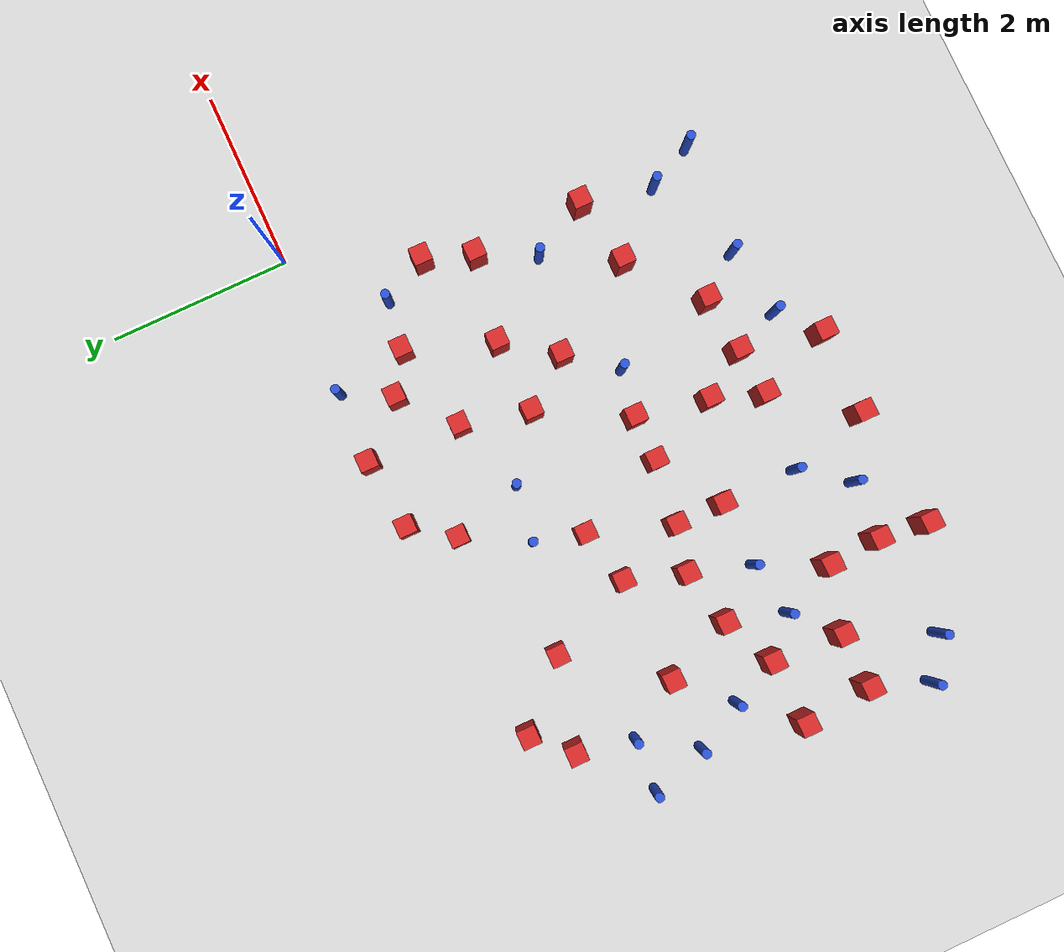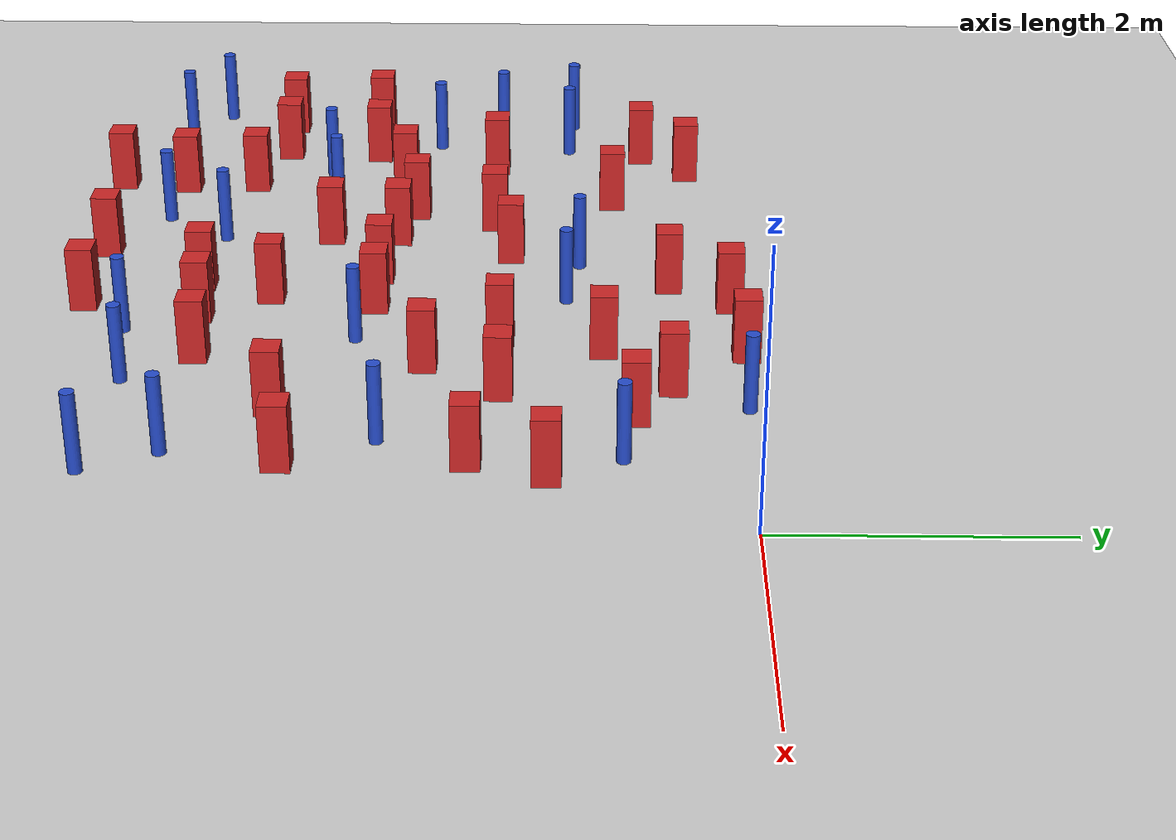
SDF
<sdf version="1.6">
 <world name="default">
  <model name="ground_plane">
   <static>1</static>
   <link name="link">
    <collision name="collision">
     <geometry><plane><normal>0 0 1</normal><size>100 100</size></plane></geometry>
     <surface><friction><ode><mu>100</mu><mu2>50</mu2></ode></friction></surface>
    </collision>
    <visual name="visual">
     <cast_shadows>0</cast_shadows>
     <geometry><plane><normal>0 0 1</normal><size>100 100</size></plane></geometry>
     <material>
      <ambient>1.0 1.0 1.0 1.0</ambient>
      <diffuse>0.8 0.8 0.8 1.0</diffuse>
      <specular>0.01 0.01 0.01 1.000000</specular>
     </material>
    </visual>
   </link>
  </model>
  <model name="square_post_obstacle0">
   <static>true</static>
   <pose>-2.3731624759 0.0419707652193 8.22691968438e-08 7.2212513382e-06 -7.54495500217e-07 2.29674213826e-05</pose>
   <link name="link">
    <pose>0 0 0.25 0 -0 0</pose>
    <inertial>
     <mass>100</mass>
     <inertia>
      <ixx>0.166667</ixx>
      <ixy>0</ixy>
      <ixz>0</ixz>
      <iyy>0.166667</iyy>
      <iyz>0</iyz>
      <izz>0.166667</izz>
     </inertia>
    </inertial>
    <collision name="collision"><geometry><box><size>.2 .2 .5</size></box></geometry></collision>
    <visual name="visual">
     <geometry><box><size>.2 .2 .5</size></box></geometry>
     <material>
      <script><name>Gazebo/Red</name><uri>file://media/materials/scripts/gazebo.material</uri></script>
     </material>
    </visual>
   </link>
  </model>
  <model name="pole_obstacle1">
   <static>true</static>
   <pose>-6.46145248811 -4.59415883303 2.88873142074e-08 -9.90536690842e-09 4.60219948965e-07 -1.20965994976e-07</pose>
   <link name="link">
    <pose>0 0 0.3 0 -0 0</pose>
    <inertial>
     <mass>1</mass>
     <inertia><ixx>0.145833</ixx><ixy>0</ixy><ixz>0</ixz><iyy>0.145833</iyy><iyz>0</iyz><izz>0.125</izz></inertia>
    </inertial>
    <collision name="collision">
     <geometry><cylinder><radius>0.05</radius><length>.6</length></cylinder></geometry>
    </collision>
    <visual name="visual">
     <geometry><cylinder><radius>0.05</radius><length>.6</length></cylinder></geometry>
     <material>
      <script><name>Gazebo/Blue</name><uri>file://media/materials/scripts/gazebo.material</uri></script>
     </material>
    </visual>
   </link>
  </model>
  <model name="square_post_obstacle6">
   <static>true</static>
   <pose>-3.60637497472 -2.69285466474 8.22691968438e-08 7.2212513382e-06 -7.54495500217e-07 2.29674213826e-05</pose>
   <link name="link">
    <pose>0 0 0.25 0 -0 0</pose>
    <inertial>
     <mass>100</mass>
     <inertia>
      <ixx>0.166667</ixx>
      <ixy>0</ixy>
      <ixz>0</ixz>
      <iyy>0.166667</iyy>
      <iyz>0</iyz>
      <izz>0.166667</izz>
     </inertia>
    </inertial>
    <collision name="collision"><geometry><box><size>.2 .2 .5</size></box></geometry></collision>
    <visual name="visual">
     <geometry><box><size>.2 .2 .5</size></box></geometry>
     <material>
      <script><name>Gazebo/Red</name><uri>file://media/materials/scripts/gazebo.material</uri></script>
     </material>
    </visual>
   </link>
  </model>
  <model name="square_post_obstacle10">
   <static>true</static>
   <pose>-5.98233309754 -0.667109607882 8.22691968438e-08 7.2212513382e-06 -7.54495500217e-07 2.29674213826e-05</pose>
   <link name="link">
    <pose>0 0 0.25 0 -0 0</pose>
    <inertial>
     <mass>100</mass>
     <inertia>
      <ixx>0.166667</ixx>
      <ixy>0</ixy>
      <ixz>0</ixz>
      <iyy>0.166667</iyy>
      <iyz>0</iyz>
      <izz>0.166667</izz>
     </inertia>
    </inertial>
    <collision name="collision"><geometry><box><size>.2 .2 .5</size></box></geometry></collision>
    <visual name="visual">
     <geometry><box><size>.2 .2 .5</size></box></geometry>
     <material>
      <script><name>Gazebo/Red</name><uri>file://media/materials/scripts/gazebo.material</uri></script>
     </material>
    </visual>
   </link>
  </model>
  <model name="pole_obstacle8">
   <static>true</static>
   <pose>-6.69223474554 -1.24528265409 2.88873142074e-08 -9.90536689445e-09 4.60219948999e-07 -1.20965994956e-07</pose>
   <link name="link">
    <pose>0 0 0.3 0 -0 0</pose>
    <inertial>
     <mass>1</mass>
     <inertia><ixx>0.145833</ixx><ixy>0</ixy><ixz>0</ixz><iyy>0.145833</iyy><iyz>0</iyz><izz>0.125</izz></inertia>
    </inertial>
    <collision name="collision">
     <geometry><cylinder><radius>0.05</radius><length>.6</length></cylinder></geometry>
    </collision>
    <visual name="visual">
     <geometry><cylinder><radius>0.05</radius><length>.6</length></cylinder></geometry>
     <material>
      <script><name>Gazebo/Blue</name><uri>file://media/materials/scripts/gazebo.material</uri></script>
     </material>
    </visual>
   </link>
  </model>
  <model name="square_post_obstacle22">
   <static>true</static>
   <pose>-5.62600483172 -0.300672023755 8.22691968438e-08 7.2212513382e-06 -7.54495500217e-07 2.29674213826e-05</pose>
   <link name="link">
    <pose>0 0 0.25 0 -0 0</pose>
    <inertial>
     <mass>100</mass>
     <inertia>
      <ixx>0.166667</ixx>
      <ixy>0</ixy>
      <ixz>0</ixz>
      <iyy>0.166667</iyy>
      <iyz>0</iyz>
      <izz>0.166667</izz>
     </inertia>
    </inertial>
    <collision name="collision"><geometry><box><size>.2 .2 .5</size></box></geometry></collision>
    <visual name="visual">
     <geometry><box><size>.2 .2 .5</size></box></geometry>
     <material>
      <script><name>Gazebo/Red</name><uri>file://media/materials/scripts/gazebo.material</uri></script>
     </material>
    </visual>
   </link>
  </model>
  <model name="square_post_obstacle29">
   <static>true</static>
   <pose>-3.473738309 -0.489324181434 8.22691968438e-08 7.2212513382e-06 -7.54495500217e-07 2.29674213826e-05</pose>
   <link name="link">
    <pose>0 0 0.25 0 -0 0</pose>
    <inertial>
     <mass>100</mass>
     <inertia>
      <ixx>0.166667</ixx>
      <ixy>0</ixy>
      <ixz>0</ixz>
      <iyy>0.166667</iyy>
      <iyz>0</iyz>
      <izz>0.166667</izz>
     </inertia>
    </inertial>
    <collision name="collision"><geometry><box><size>.2 .2 .5</size></box></geometry></collision>
    <visual name="visual">
     <geometry><box><size>.2 .2 .5</size></box></geometry>
     <material>
      <script><name>Gazebo/Red</name><uri>file://media/materials/scripts/gazebo.material</uri></script>
     </material>
    </visual>
   </link>
  </model>
  <model name="pole_obstacle34">
   <static>true</static>
   <pose>-6.50235670165 -1.85695007518 2.88873142074e-08 -9.90536689445e-09 4.60219948999e-07 -1.20965994956e-07</pose>
   <link name="link">
    <pose>0 0 0.3 0 -0 0</pose>
    <inertial>
     <mass>1</mass>
     <inertia><ixx>0.145833</ixx><ixy>0</ixy><ixz>0</ixz><iyy>0.145833</iyy><iyz>0</iyz><izz>0.125</izz></inertia>
    </inertial>
    <collision name="collision">
     <geometry><cylinder><radius>0.05</radius><length>.6</length></cylinder></geometry>
    </collision>
    <visual name="visual">
     <geometry><cylinder><radius>0.05</radius><length>.6</length></cylinder></geometry>
     <material>
      <script><name>Gazebo/Blue</name><uri>file://media/materials/scripts/gazebo.material</uri></script>
     </material>
    </visual>
   </link>
  </model>
  <model name="pole_obstacle38">
   <static>true</static>
   <pose>-3.24315775724 -1.26322818179 2.88873142074e-08 -9.90536689395e-09 4.60219949e-07 -1.20965994953e-07</pose>
   <link name="link">
    <pose>0 0 0.3 0 -0 0</pose>
    <inertial>
     <mass>1</mass>
     <inertia><ixx>0.145833</ixx><ixy>0</ixy><ixz>0</ixz><iyy>0.145833</iyy><iyz>0</iyz><izz>0.125</izz></inertia>
    </inertial>
    <collision name="collision">
     <geometry><cylinder><radius>0.05</radius><length>.6</length></cylinder></geometry>
    </collision>
    <visual name="visual">
     <geometry><cylinder><radius>0.05</radius><length>.6</length></cylinder></geometry>
     <material>
      <script><name>Gazebo/Blue</name><uri>file://media/materials/scripts/gazebo.material</uri></script>
     </material>
    </visual>
   </link>
  </model>
  <model name="square_post_obstacle40">
   <static>true</static>
   <pose>-1.77938917814 -1.71613806845 8.22691968438e-08 7.2212513382e-06 -7.54495500217e-07 2.29674213826e-05</pose>
   <link name="link">
    <pose>0 0 0.25 0 -0 0</pose>
    <inertial>
     <mass>100</mass>
     <inertia>
      <ixx>0.166667</ixx>
      <ixy>0</ixy>
      <ixz>0</ixz>
      <iyy>0.166667</iyy>
      <iyz>0</iyz>
      <izz>0.166667</izz>
     </inertia>
    </inertial>
    <collision name="collision"><geometry><box><size>.2 .2 .5</size></box></geometry></collision>
    <visual name="visual">
     <geometry><box><size>.2 .2 .5</size></box></geometry>
     <material>
      <script><name>Gazebo/Red</name><uri>file://media/materials/scripts/gazebo.material</uri></script>
     </material>
    </visual>
   </link>
  </model>
  <model name="square_post_obstacle49">
   <static>true</static>
   <pose>-0.783361529921 -3.14025951833 8.22691968438e-08 7.2212513382e-06 -7.54495500217e-07 2.29674213826e-05</pose>
   <link name="link">
    <pose>0 0 0.25 0 -0 0</pose>
    <inertial>
     <mass>100</mass>
     <inertia>
      <ixx>0.166667</ixx>
      <ixy>0</ixy>
      <ixz>0</ixz>
      <iyy>0.166667</iyy>
      <iyz>0</iyz>
      <izz>0.166667</izz>
     </inertia>
    </inertial>
    <collision name="collision"><geometry><box><size>.2 .2 .5</size></box></geometry></collision>
    <visual name="visual">
     <geometry><box><size>.2 .2 .5</size></box></geometry>
     <material>
      <script><name>Gazebo/Red</name><uri>file://media/materials/scripts/gazebo.material</uri></script>
     </material>
    </visual>
   </link>
  </model>
  <model name="square_post_obstacle53">
   <static>true</static>
   <pose>-3.25608603577 -3.48951153543 8.22691968438e-08 7.2212513382e-06 -7.54495500217e-07 2.29674213826e-05</pose>
   <link name="link">
    <pose>0 0 0.25 0 -0 0</pose>
    <inertial>
     <mass>100</mass>
     <inertia>
      <ixx>0.166667</ixx>
      <ixy>0</ixy>
      <ixz>0</ixz>
      <iyy>0.166667</iyy>
      <iyz>0</iyz>
      <izz>0.166667</izz>
     </inertia>
    </inertial>
    <collision name="collision"><geometry><box><size>.2 .2 .5</size></box></geometry></collision>
    <visual name="visual">
     <geometry><box><size>.2 .2 .5</size></box></geometry>
     <material>
      <script><name>Gazebo/Red</name><uri>file://media/materials/scripts/gazebo.material</uri></script>
     </material>
    </visual>
   </link>
  </model>
  <model name="pole_obstacle51">
   <static>true</static>
   <pose>-2.58568316584 -2.79401171315 2.88873142074e-08 -9.90536690232e-09 4.6021994898e-07 -1.20965994968e-07</pose>
   <link name="link">
    <pose>0 0 0.3 0 -0 0</pose>
    <inertial>
     <mass>1</mass>
     <inertia><ixx>0.145833</ixx><ixy>0</ixy><ixz>0</ixz><iyy>0.145833</iyy><iyz>0</iyz><izz>0.125</izz></inertia>
    </inertial>
    <collision name="collision">
     <geometry><cylinder><radius>0.05</radius><length>.6</length></cylinder></geometry>
    </collision>
    <visual name="visual">
     <geometry><cylinder><radius>0.05</radius><length>.6</length></cylinder></geometry>
     <material>
      <script><name>Gazebo/Blue</name><uri>file://media/materials/scripts/gazebo.material</uri></script>
     </material>
    </visual>
   </link>
  </model>
  <model name="square_post_obstacle60">
   <static>true</static>
   <pose>-2.29127723298 -3.92457616306 8.22691968438e-08 7.2212513382e-06 -7.54495500217e-07 2.29674213826e-05</pose>
   <link name="link">
    <pose>0 0 0.25 0 -0 0</pose>
    <inertial>
     <mass>100</mass>
     <inertia>
      <ixx>0.166667</ixx>
      <ixy>0</ixy>
      <ixz>0</ixz>
      <iyy>0.166667</iyy>
      <iyz>0</iyz>
      <izz>0.166667</izz>
     </inertia>
    </inertial>
    <collision name="collision"><geometry><box><size>.2 .2 .5</size></box></geometry></collision>
    <visual name="visual">
     <geometry><box><size>.2 .2 .5</size></box></geometry>
     <material>
      <script><name>Gazebo/Red</name><uri>file://media/materials/scripts/gazebo.material</uri></script>
     </material>
    </visual>
   </link>
  </model>
  <model name="square_post_obstacle63">
   <static>true</static>
   <pose>-1.53705062481 -3.28708723595 8.22691968438e-08 7.2212513382e-06 -7.54495500217e-07 2.29674213826e-05</pose>
   <link name="link">
    <pose>0 0 0.25 0 -0 0</pose>
    <inertial>
     <mass>100</mass>
     <inertia>
      <ixx>0.166667</ixx>
      <ixy>0</ixy>
      <ixz>0</ixz>
      <iyy>0.166667</iyy>
      <iyz>0</iyz>
      <izz>0.166667</izz>
     </inertia>
    </inertial>
    <collision name="collision"><geometry><box><size>.2 .2 .5</size></box></geometry></collision>
    <visual name="visual">
     <geometry><box><size>.2 .2 .5</size></box></geometry>
     <material>
      <script><name>Gazebo/Red</name><uri>file://media/materials/scripts/gazebo.material</uri></script>
     </material>
    </visual>
   </link>
  </model>
  <model name="square_post_obstacle66">
   <static>true</static>
   <pose>-5.73075902964 -1.88004602222 8.22691968438e-08 7.2212513382e-06 -7.54495500217e-07 2.29674213826e-05</pose>
   <link name="link">
    <pose>0 0 0.25 0 -0 0</pose>
    <inertial>
     <mass>100</mass>
     <inertia>
      <ixx>0.166667</ixx>
      <ixy>0</ixy>
      <ixz>0</ixz>
      <iyy>0.166667</iyy>
      <iyz>0</iyz>
      <izz>0.166667</izz>
     </inertia>
    </inertial>
    <collision name="collision"><geometry><box><size>.2 .2 .5</size></box></geometry></collision>
    <visual name="visual">
     <geometry><box><size>.2 .2 .5</size></box></geometry>
     <material>
      <script><name>Gazebo/Red</name><uri>file://media/materials/scripts/gazebo.material</uri></script>
     </material>
    </visual>
   </link>
  </model>
  <model name="square_post_obstacle67">
   <static>true</static>
   <pose>-1.86234983022 -0.497988338039 8.22691968438e-08 7.2212513382e-06 -7.54495500217e-07 2.29674213826e-05</pose>
   <link name="link">
    <pose>0 0 0.25 0 -0 0</pose>
    <inertial>
     <mass>100</mass>
     <inertia>
      <ixx>0.166667</ixx>
      <ixy>0</ixy>
      <ixz>0</ixz>
      <iyy>0.166667</iyy>
      <iyz>0</iyz>
      <izz>0.166667</izz>
     </inertia>
    </inertial>
    <collision name="collision"><geometry><box><size>.2 .2 .5</size></box></geometry></collision>
    <visual name="visual">
     <geometry><box><size>.2 .2 .5</size></box></geometry>
     <material>
      <script><name>Gazebo/Red</name><uri>file://media/materials/scripts/gazebo.material</uri></script>
     </material>
    </visual>
   </link>
  </model>
  <model name="square_post_obstacle75">
   <static>true</static>
   <pose>-3.10308952383 -2.69210156754 8.22691968438e-08 7.2212513382e-06 -7.54495500217e-07 2.29674213826e-05</pose>
   <link name="link">
    <pose>0 0 0.25 0 -0 0</pose>
    <inertial>
     <mass>100</mass>
     <inertia>
      <ixx>0.166667</ixx>
      <ixy>0</ixy>
      <ixz>0</ixz>
      <iyy>0.166667</iyy>
      <iyz>0</iyz>
      <izz>0.166667</izz>
     </inertia>
    </inertial>
    <collision name="collision"><geometry><box><size>.2 .2 .5</size></box></geometry></collision>
    <visual name="visual">
     <geometry><box><size>.2 .2 .5</size></box></geometry>
     <material>
      <script><name>Gazebo/Red</name><uri>file://media/materials/scripts/gazebo.material</uri></script>
     </material>
    </visual>
   </link>
  </model>
  <model name="square_post_obstacle76">
   <static>true</static>
   <pose>-3.15319473334 -0.0411521689804 8.22691968438e-08 7.2212513382e-06 -7.54495500217e-07 2.29674213826e-05</pose>
   <link name="link">
    <pose>0 0 0.25 0 -0 0</pose>
    <inertial>
     <mass>100</mass>
     <inertia>
      <ixx>0.166667</ixx>
      <ixy>0</ixy>
      <ixz>0</ixz>
      <iyy>0.166667</iyy>
      <iyz>0</iyz>
      <izz>0.166667</izz>
     </inertia>
    </inertial>
    <collision name="collision"><geometry><box><size>.2 .2 .5</size></box></geometry></collision>
    <visual name="visual">
     <geometry><box><size>.2 .2 .5</size></box></geometry>
     <material>
      <script><name>Gazebo/Red</name><uri>file://media/materials/scripts/gazebo.material</uri></script>
     </material>
    </visual>
   </link>
  </model>
  <model name="square_post_obstacle77">
   <static>true</static>
   <pose>-2.59081537723 -1.73606076694 8.22691968438e-08 7.2212513382e-06 -7.54495500217e-07 2.29674213826e-05</pose>
   <link name="link">
    <pose>0 0 0.25 0 -0 0</pose>
    <inertial>
     <mass>100</mass>
     <inertia>
      <ixx>0.166667</ixx>
      <ixy>0</ixy>
      <ixz>0</ixz>
      <iyy>0.166667</iyy>
      <iyz>0</iyz>
      <izz>0.166667</izz>
     </inertia>
    </inertial>
    <collision name="collision"><geometry><box><size>.2 .2 .5</size></box></geometry></collision>
    <visual name="visual">
     <geometry><box><size>.2 .2 .5</size></box></geometry>
     <material>
      <script><name>Gazebo/Red</name><uri>file://media/materials/scripts/gazebo.material</uri></script>
     </material>
    </visual>
   </link>
  </model>
  <model name="pole_obstacle85">
   <static>true</static>
   <pose>-3.85227615762 -1.17030086917 2.88873142074e-08 -9.90536689395e-09 4.60219949e-07 -1.20965994953e-07</pose>
   <link name="link">
    <pose>0 0 0.3 0 -0 0</pose>
    <inertial>
     <mass>1</mass>
     <inertia><ixx>0.145833</ixx><ixy>0</ixy><ixz>0</ixz><iyy>0.145833</iyy><iyz>0</iyz><izz>0.125</izz></inertia>
    </inertial>
    <collision name="collision">
     <geometry><cylinder><radius>0.05</radius><length>.6</length></cylinder></geometry>
    </collision>
    <visual name="visual">
     <geometry><cylinder><radius>0.05</radius><length>.6</length></cylinder></geometry>
     <material>
      <script><name>Gazebo/Blue</name><uri>file://media/materials/scripts/gazebo.material</uri></script>
     </material>
    </visual>
   </link>
  </model>
  <model name="square_post_obstacle81">
   <static>true</static>
   <pose>-5.37946193562 -4.98454100906 8.22691968438e-08 7.2212513382e-06 -7.54495500217e-07 2.29674213826e-05</pose>
   <link name="link">
    <pose>0 0 0.25 0 -0 0</pose>
    <inertial>
     <mass>100</mass>
     <inertia>
      <ixx>0.166667</ixx>
      <ixy>0</ixy>
      <ixz>0</ixz>
      <iyy>0.166667</iyy>
      <iyz>0</iyz>
      <izz>0.166667</izz>
     </inertia>
    </inertial>
    <collision name="collision"><geometry><box><size>.2 .2 .5</size></box></geometry></collision>
    <visual name="visual">
     <geometry><box><size>.2 .2 .5</size></box></geometry>
     <material>
      <script><name>Gazebo/Red</name><uri>file://media/materials/scripts/gazebo.material</uri></script>
     </material>
    </visual>
   </link>
  </model>
  <model name="square_post_obstacle83">
   <static>true</static>
   <pose>-2.17954546836 -2.27250172768 8.22691968438e-08 7.2212513382e-06 -7.54495500217e-07 2.29674213826e-05</pose>
   <link name="link">
    <pose>0 0 0.25 0 -0 0</pose>
    <inertial>
     <mass>100</mass>
     <inertia>
      <ixx>0.166667</ixx>
      <ixy>0</ixy>
      <ixz>0</ixz>
      <iyy>0.166667</iyy>
      <iyz>0</iyz>
      <izz>0.166667</izz>
     </inertia>
    </inertial>
    <collision name="collision"><geometry><box><size>.2 .2 .5</size></box></geometry></collision>
    <visual name="visual">
     <geometry><box><size>.2 .2 .5</size></box></geometry>
     <material>
      <script><name>Gazebo/Red</name><uri>file://media/materials/scripts/gazebo.material</uri></script>
     </material>
    </visual>
   </link>
  </model>
  <model name="square_post_obstacle84">
   <static>true</static>
   <pose>-6.69979892688 -2.93054896401 8.22691968438e-08 7.2212513382e-06 -7.54495500217e-07 2.29674213826e-05</pose>
   <link name="link">
    <pose>0 0 0.25 0 -0 0</pose>
    <inertial>
     <mass>100</mass>
     <inertia>
      <ixx>0.166667</ixx>
      <ixy>0</ixy>
      <ixz>0</ixz>
      <iyy>0.166667</iyy>
      <iyz>0</iyz>
      <izz>0.166667</izz>
     </inertia>
    </inertial>
    <collision name="collision"><geometry><box><size>.2 .2 .5</size></box></geometry></collision>
    <visual name="visual">
     <geometry><box><size>.2 .2 .5</size></box></geometry>
     <material>
      <script><name>Gazebo/Red</name><uri>file://media/materials/scripts/gazebo.material</uri></script>
     </material>
    </visual>
   </link>
  </model>
  <model name="pole_obstacle99">
   <static>true</static>
   <pose>-2.71224328505 -4.51716945643 2.88873142074e-08 -9.90536689859e-09 4.60219948989e-07 -1.20965994961e-07</pose>
   <link name="link">
    <pose>0 0 0.3 0 -0 0</pose>
    <inertial>
     <mass>1</mass>
     <inertia><ixx>0.145833</ixx><ixy>0</ixy><ixz>0</ixz><iyy>0.145833</iyy><iyz>0</iyz><izz>0.125</izz></inertia>
    </inertial>
    <collision name="collision">
     <geometry><cylinder><radius>0.05</radius><length>.6</length></cylinder></geometry>
    </collision>
    <visual name="visual">
     <geometry><cylinder><radius>0.05</radius><length>.6</length></cylinder></geometry>
     <material>
      <script><name>Gazebo/Blue</name><uri>file://media/materials/scripts/gazebo.material</uri></script>
     </material>
    </visual>
   </link>
  </model>
  <model name="square_post_obstacle88">
   <static>true</static>
   <pose>-2.41449330346 -0.983638743938 8.22691968438e-08 7.2212513382e-06 -7.54495500217e-07 2.29674213826e-05</pose>
   <link name="link">
    <pose>0 0 0.25 0 -0 0</pose>
    <inertial>
     <mass>100</mass>
     <inertia>
      <ixx>0.166667</ixx>
      <ixy>0</ixy>
      <ixz>0</ixz>
      <iyy>0.166667</iyy>
      <iyz>0</iyz>
      <izz>0.166667</izz>
     </inertia>
    </inertial>
    <collision name="collision"><geometry><box><size>.2 .2 .5</size></box></geometry></collision>
    <visual name="visual">
     <geometry><box><size>.2 .2 .5</size></box></geometry>
     <material>
      <script><name>Gazebo/Red</name><uri>file://media/materials/scripts/gazebo.material</uri></script>
     </material>
    </visual>
   </link>
  </model>
  <model name="pole_obstacle102">
   <static>true</static>
   <pose>-4.31191837084 -3.98675876905 2.88873142074e-08 -9.90536690067e-09 4.60219948984e-07 -1.20965994963e-07</pose>
   <link name="link">
    <pose>0 0 0.3 0 -0 0</pose>
    <inertial>
     <mass>1</mass>
     <inertia><ixx>0.145833</ixx><ixy>0</ixy><ixz>0</ixz><iyy>0.145833</iyy><iyz>0</iyz><izz>0.125</izz></inertia>
    </inertial>
    <collision name="collision">
     <geometry><cylinder><radius>0.05</radius><length>.6</length></cylinder></geometry>
    </collision>
    <visual name="visual">
     <geometry><cylinder><radius>0.05</radius><length>.6</length></cylinder></geometry>
     <material>
      <script><name>Gazebo/Blue</name><uri>file://media/materials/scripts/gazebo.material</uri></script>
     </material>
    </visual>
   </link>
  </model>
  <model name="pole_obstacle109">
   <static>true</static>
   <pose>-0.686730005713 -4.45706729058 2.88873142074e-08 -9.90536689661e-09 4.60219948993e-07 -1.20965994957e-07</pose>
   <link name="link">
    <pose>0 0 0.3 0 -0 0</pose>
    <inertial>
     <mass>1</mass>
     <inertia><ixx>0.145833</ixx><ixy>0</ixy><ixz>0</ixz><iyy>0.145833</iyy><iyz>0</iyz><izz>0.125</izz></inertia>
    </inertial>
    <collision name="collision">
     <geometry><cylinder><radius>0.05</radius><length>.6</length></cylinder></geometry>
    </collision>
    <visual name="visual">
     <geometry><cylinder><radius>0.05</radius><length>.6</length></cylinder></geometry>
     <material>
      <script><name>Gazebo/Blue</name><uri>file://media/materials/scripts/gazebo.material</uri></script>
     </material>
    </visual>
   </link>
  </model>
  <model name="pole_obstacle126">
   <static>true</static>
   <pose>-0.936953569316 -3.94710325393 2.88873142074e-08 -9.90536689636e-09 4.60219948994e-07 -1.20965994958e-07</pose>
   <link name="link">
    <pose>0 0 0.3 0 -0 0</pose>
    <inertial>
     <mass>1</mass>
     <inertia><ixx>0.145833</ixx><ixy>0</ixy><ixz>0</ixz><iyy>0.145833</iyy><iyz>0</iyz><izz>0.125</izz></inertia>
    </inertial>
    <collision name="collision">
     <geometry><cylinder><radius>0.05</radius><length>.6</length></cylinder></geometry>
    </collision>
    <visual name="visual">
     <geometry><cylinder><radius>0.05</radius><length>.6</length></cylinder></geometry>
     <material>
      <script><name>Gazebo/Blue</name><uri>file://media/materials/scripts/gazebo.material</uri></script>
     </material>
    </visual>
   </link>
  </model>
  <model name="pole_obstacle132">
   <static>true</static>
   <pose>-6.8834823391 -4.30624572221 2.88873142074e-08 -9.90536690842e-09 4.60219948965e-07 -1.20965994976e-07</pose>
   <link name="link">
    <pose>0 0 0.3 0 -0 0</pose>
    <inertial>
     <mass>1</mass>
     <inertia><ixx>0.145833</ixx><ixy>0</ixy><ixz>0</ixz><iyy>0.145833</iyy><iyz>0</iyz><izz>0.125</izz></inertia>
    </inertial>
    <collision name="collision">
     <geometry><cylinder><radius>0.05</radius><length>.6</length></cylinder></geometry>
    </collision>
    <visual name="visual">
     <geometry><cylinder><radius>0.05</radius><length>.6</length></cylinder></geometry>
     <material>
      <script><name>Gazebo/Blue</name><uri>file://media/materials/scripts/gazebo.material</uri></script>
     </material>
    </visual>
   </link>
  </model>
  <model name="square_post_obstacle115">
   <static>true</static>
   <pose>-4.30465818767 -2.60533181986 8.22691968438e-08 7.2212513382e-06 -7.54495500217e-07 2.29674213826e-05</pose>
   <link name="link">
    <pose>0 0 0.25 0 -0 0</pose>
    <inertial>
     <mass>100</mass>
     <inertia>
      <ixx>0.166667</ixx>
      <ixy>0</ixy>
      <ixz>0</ixz>
      <iyy>0.166667</iyy>
      <iyz>0</iyz>
      <izz>0.166667</izz>
     </inertia>
    </inertial>
    <collision name="collision"><geometry><box><size>.2 .2 .5</size></box></geometry></collision>
    <visual name="visual">
     <geometry><box><size>.2 .2 .5</size></box></geometry>
     <material>
      <script><name>Gazebo/Red</name><uri>file://media/materials/scripts/gazebo.material</uri></script>
     </material>
    </visual>
   </link>
  </model>
  <model name="square_post_obstacle116">
   <static>true</static>
   <pose>-0.823009748107 -1.89367387959 8.22691968438e-08 7.2212513382e-06 -7.54495500217e-07 2.29674213826e-05</pose>
   <link name="link">
    <pose>0 0 0.25 0 -0 0</pose>
    <inertial>
     <mass>100</mass>
     <inertia>
      <ixx>0.166667</ixx>
      <ixy>0</ixy>
      <ixz>0</ixz>
      <iyy>0.166667</iyy>
      <iyz>0</iyz>
      <izz>0.166667</izz>
     </inertia>
    </inertial>
    <collision name="collision"><geometry><box><size>.2 .2 .5</size></box></geometry></collision>
    <visual name="visual">
     <geometry><box><size>.2 .2 .5</size></box></geometry>
     <material>
      <script><name>Gazebo/Red</name><uri>file://media/materials/scripts/gazebo.material</uri></script>
     </material>
    </visual>
   </link>
  </model>
  <model name="pole_obstacle139">
   <static>true</static>
   <pose>-1.57899547713 0.025960130653 2.88873142074e-08 -9.90536689729e-09 4.60219948992e-07 -1.20965994959e-07</pose>
   <link name="link">
    <pose>0 0 0.3 0 -0 0</pose>
    <inertial>
     <mass>1</mass>
     <inertia><ixx>0.145833</ixx><ixy>0</ixy><ixz>0</ixz><iyy>0.145833</iyy><iyz>0</iyz><izz>0.125</izz></inertia>
    </inertial>
    <collision name="collision">
     <geometry><cylinder><radius>0.05</radius><length>.6</length></cylinder></geometry>
    </collision>
    <visual name="visual">
     <geometry><cylinder><radius>0.05</radius><length>.6</length></cylinder></geometry>
     <material>
      <script><name>Gazebo/Blue</name><uri>file://media/materials/scripts/gazebo.material</uri></script>
     </material>
    </visual>
   </link>
  </model>
  <model name="square_post_obstacle126">
   <static>true</static>
   <pose>-3.11817940388 -4.87730048211 8.22691968438e-08 7.22125133819e-06 -7.54495500217e-07 2.29674213826e-05</pose>
   <link name="link">
    <pose>0 0 0.25 0 -0 0</pose>
    <inertial>
     <mass>100</mass>
     <inertia>
      <ixx>0.166667</ixx>
      <ixy>0</ixy>
      <ixz>0</ixz>
      <iyy>0.166667</iyy>
      <iyz>0</iyz>
      <izz>0.166667</izz>
     </inertia>
    </inertial>
    <collision name="collision"><geometry><box><size>.2 .2 .5</size></box></geometry></collision>
    <visual name="visual">
     <geometry><box><size>.2 .2 .5</size></box></geometry>
     <material>
      <script><name>Gazebo/Red</name><uri>file://media/materials/scripts/gazebo.material</uri></script>
     </material>
    </visual>
   </link>
  </model>
  <model name="square_post_obstacle129">
   <static>true</static>
   <pose>-6.04107419991 -3.66880037566 8.22691968438e-08 7.2212513382e-06 -7.54495500217e-07 2.29674213826e-05</pose>
   <link name="link">
    <pose>0 0 0.25 0 -0 0</pose>
    <inertial>
     <mass>100</mass>
     <inertia>
      <ixx>0.166667</ixx>
      <ixy>0</ixy>
      <ixz>0</ixz>
      <iyy>0.166667</iyy>
      <iyz>0</iyz>
      <izz>0.166667</izz>
     </inertia>
    </inertial>
    <collision name="collision"><geometry><box><size>.2 .2 .5</size></box></geometry></collision>
    <visual name="visual">
     <geometry><box><size>.2 .2 .5</size></box></geometry>
     <material>
      <script><name>Gazebo/Red</name><uri>file://media/materials/scripts/gazebo.material</uri></script>
     </material>
    </visual>
   </link>
  </model>
  <model name="pole_obstacle148">
   <static>true</static>
   <pose>-5.02618286176 -3.16250026472 2.88873142074e-08 -9.90536690245e-09 4.6021994898e-07 -1.20965994966e-07</pose>
   <link name="link">
    <pose>0 0 0.3 0 -0 0</pose>
    <inertial>
     <mass>1</mass>
     <inertia><ixx>0.145833</ixx><ixy>0</ixy><ixz>0</ixz><iyy>0.145833</iyy><iyz>0</iyz><izz>0.125</izz></inertia>
    </inertial>
    <collision name="collision">
     <geometry><cylinder><radius>0.05</radius><length>.6</length></cylinder></geometry>
    </collision>
    <visual name="visual">
     <geometry><cylinder><radius>0.05</radius><length>.6</length></cylinder></geometry>
     <material>
      <script><name>Gazebo/Blue</name><uri>file://media/materials/scripts/gazebo.material</uri></script>
     </material>
    </visual>
   </link>
  </model>
  <model name="square_post_obstacle139">
   <static>true</static>
   <pose>-3.99354223945 -1.70537522214 8.22691968438e-08 7.2212513382e-06 -7.54495500217e-07 2.29674213826e-05</pose>
   <link name="link">
    <pose>0 0 0.25 0 -0 0</pose>
    <inertial>
     <mass>100</mass>
     <inertia>
      <ixx>0.166667</ixx>
      <ixy>0</ixy>
      <ixz>0</ixz>
      <iyy>0.166667</iyy>
      <iyz>0</iyz>
      <izz>0.166667</izz>
     </inertia>
    </inertial>
    <collision name="collision"><geometry><box><size>.2 .2 .5</size></box></geometry></collision>
    <visual name="visual">
     <geometry><box><size>.2 .2 .5</size></box></geometry>
     <material>
      <script><name>Gazebo/Red</name><uri>file://media/materials/scripts/gazebo.material</uri></script>
     </material>
    </visual>
   </link>
  </model>
  <model name="pole_obstacle155">
   <static>true</static>
   <pose>-1.93832199771 -4.39727035846 2.88873142074e-08 -9.90536689852e-09 4.60219948989e-07 -1.2096599496e-07</pose>
   <link name="link">
    <pose>0 0 0.3 0 -0 0</pose>
    <inertial>
     <mass>1</mass>
     <inertia><ixx>0.145833</ixx><ixy>0</ixy><ixz>0</ixz><iyy>0.145833</iyy><iyz>0</iyz><izz>0.125</izz></inertia>
    </inertial>
    <collision name="collision">
     <geometry><cylinder><radius>0.05</radius><length>.6</length></cylinder></geometry>
    </collision>
    <visual name="visual">
     <geometry><cylinder><radius>0.05</radius><length>.6</length></cylinder></geometry>
     <material>
      <script><name>Gazebo/Blue</name><uri>file://media/materials/scripts/gazebo.material</uri></script>
     </material>
    </visual>
   </link>
  </model>
  <model name="square_post_obstacle153">
   <static>true</static>
   <pose>-3.45362550391 -4.04171936512 8.22691968438e-08 7.2212513382e-06 -7.54495500217e-07 2.29674213826e-05</pose>
   <link name="link">
    <pose>0 0 0.25 0 -0 0</pose>
    <inertial>
     <mass>100</mass>
     <inertia>
      <ixx>0.166667</ixx>
      <ixy>0</ixy>
      <ixz>0</ixz>
      <iyy>0.166667</iyy>
      <iyz>0</iyz>
      <izz>0.166667</izz>
     </inertia>
    </inertial>
    <collision name="collision"><geometry><box><size>.2 .2 .5</size></box></geometry></collision>
    <visual name="visual">
     <geometry><box><size>.2 .2 .5</size></box></geometry>
     <material>
      <script><name>Gazebo/Red</name><uri>file://media/materials/scripts/gazebo.material</uri></script>
     </material>
    </visual>
   </link>
  </model>
  <model name="pole_obstacle161">
   <static>true</static>
   <pose>-6.13092230826 -1.27925563627 2.88873142074e-08 -9.90536689445e-09 4.60219948999e-07 -1.20965994956e-07</pose>
   <link name="link">
    <pose>0 0 0.3 0 -0 0</pose>
    <inertial>
     <mass>1</mass>
     <inertia><ixx>0.145833</ixx><ixy>0</ixy><ixz>0</ixz><iyy>0.145833</iyy><iyz>0</iyz><izz>0.125</izz></inertia>
    </inertial>
    <collision name="collision">
     <geometry><cylinder><radius>0.05</radius><length>.6</length></cylinder></geometry>
    </collision>
    <visual name="visual">
     <geometry><cylinder><radius>0.05</radius><length>.6</length></cylinder></geometry>
     <material>
      <script><name>Gazebo/Blue</name><uri>file://media/materials/scripts/gazebo.material</uri></script>
     </material>
    </visual>
   </link>
  </model>
  <model name="square_post_obstacle154">
   <static>true</static>
   <pose>-4.05698680317 -4.87180531949 8.22691968438e-08 7.22125133819e-06 -7.54495500217e-07 2.29674213826e-05</pose>
   <link name="link">
    <pose>0 0 0.25 0 -0 0</pose>
    <inertial>
     <mass>100</mass>
     <inertia>
      <ixx>0.166667</ixx>
      <ixy>0</ixy>
      <ixz>0</ixz>
      <iyy>0.166667</iyy>
      <iyz>0</iyz>
      <izz>0.166667</izz>
     </inertia>
    </inertial>
    <collision name="collision"><geometry><box><size>.2 .2 .5</size></box></geometry></collision>
    <visual name="visual">
     <geometry><box><size>.2 .2 .5</size></box></geometry>
     <material>
      <script><name>Gazebo/Red</name><uri>file://media/materials/scripts/gazebo.material</uri></script>
     </material>
    </visual>
   </link>
  </model>
  <model name="square_post_obstacle160">
   <static>true</static>
   <pose>-5.00980274769 -0.915872429384 8.22691968438e-08 7.22125133819e-06 -7.54495500217e-07 2.29674213826e-05</pose>
   <link name="link">
    <pose>0 0 0.25 0 -0 0</pose>
    <inertial>
     <mass>100</mass>
     <inertia>
      <ixx>0.166667</ixx>
      <ixy>0</ixy>
      <ixz>0</ixz>
      <iyy>0.166667</iyy>
      <iyz>0</iyz>
      <izz>0.166667</izz>
     </inertia>
    </inertial>
    <collision name="collision"><geometry><box><size>.2 .2 .5</size></box></geometry></collision>
    <visual name="visual">
     <geometry><box><size>.2 .2 .5</size></box></geometry>
     <material>
      <script><name>Gazebo/Red</name><uri>file://media/materials/scripts/gazebo.material</uri></script>
     </material>
    </visual>
   </link>
  </model>
  <model name="pole_obstacle171">
   <static>true</static>
   <pose>-6.23275343721 -2.38517686582 2.88873142074e-08 -9.90536690245e-09 4.6021994898e-07 -1.20965994966e-07</pose>
   <link name="link">
    <pose>0 0 0.3 0 -0 0</pose>
    <inertial>
     <mass>1</mass>
     <inertia><ixx>0.145833</ixx><ixy>0</ixy><ixz>0</ixz><iyy>0.145833</iyy><iyz>0</iyz><izz>0.125</izz></inertia>
    </inertial>
    <collision name="collision">
     <geometry><cylinder><radius>0.05</radius><length>.6</length></cylinder></geometry>
    </collision>
    <visual name="visual">
     <geometry><cylinder><radius>0.05</radius><length>.6</length></cylinder></geometry>
     <material>
      <script><name>Gazebo/Blue</name><uri>file://media/materials/scripts/gazebo.material</uri></script>
     </material>
    </visual>
   </link>
  </model>
  <model name="square_post_obstacle164">
   <static>true</static>
   <pose>-5.31283393585 -4.44135136184 8.22691968438e-08 7.22125133819e-06 -7.54495500217e-07 2.29674213826e-05</pose>
   <link name="link">
    <pose>0 0 0.25 0 -0 0</pose>
    <inertial>
     <mass>100</mass>
     <inertia>
      <ixx>0.166667</ixx>
      <ixy>0</ixy>
      <ixz>0</ixz>
      <iyy>0.166667</iyy>
      <iyz>0</iyz>
      <izz>0.166667</izz>
     </inertia>
    </inertial>
    <collision name="collision"><geometry><box><size>.2 .2 .5</size></box></geometry></collision>
    <visual name="visual">
     <geometry><box><size>.2 .2 .5</size></box></geometry>
     <material>
      <script><name>Gazebo/Red</name><uri>file://media/materials/scripts/gazebo.material</uri></script>
     </material>
    </visual>
   </link>
  </model>
  <model name="square_post_obstacle187">
   <static>true</static>
   <pose>-2.92420490768 -3.98887628196 8.22691968438e-08 7.22125133819e-06 -7.54495500217e-07 2.29674213826e-05</pose>
   <link name="link">
    <pose>0 0 0.25 0 -0 0</pose>
    <inertial>
     <mass>100</mass>
     <inertia>
      <ixx>0.166667</ixx>
      <ixy>0</ixy>
      <ixz>0</ixz>
      <iyy>0.166667</iyy>
      <iyz>0</iyz>
      <izz>0.166667</izz>
     </inertia>
    </inertial>
    <collision name="collision"><geometry><box><size>.2 .2 .5</size></box></geometry></collision>
    <visual name="visual">
     <geometry><box><size>.2 .2 .5</size></box></geometry>
     <material>
      <script><name>Gazebo/Red</name><uri>file://media/materials/scripts/gazebo.material</uri></script>
     </material>
    </visual>
   </link>
  </model>
  <model name="square_post_obstacle193">
   <static>true</static>
   <pose>-1.43457748521 -0.764746841478 8.22691968438e-08 7.2212513382e-06 -7.54495500217e-07 2.29674213826e-05</pose>
   <link name="link">
    <pose>0 0 0.25 0 -0 0</pose>
    <inertial>
     <mass>100</mass>
     <inertia>
      <ixx>0.166667</ixx>
      <ixy>0</ixy>
      <ixz>0</ixz>
      <iyy>0.166667</iyy>
      <iyz>0</iyz>
      <izz>0.166667</izz>
     </inertia>
    </inertial>
    <collision name="collision"><geometry><box><size>.2 .2 .5</size></box></geometry></collision>
    <visual name="visual">
     <geometry><box><size>.2 .2 .5</size></box></geometry>
     <material>
      <script><name>Gazebo/Red</name><uri>file://media/materials/scripts/gazebo.material</uri></script>
     </material>
    </visual>
   </link>
  </model>
  <model name="square_post_obstacle201">
   <static>true</static>
   <pose>-5.34731264254 -3.86671584127 8.22691968438e-08 7.2212513382e-06 -7.54495500217e-07 2.29674213826e-05</pose>
   <link name="link">
    <pose>0 0 0.25 0 -0 0</pose>
    <inertial>
     <mass>100</mass>
     <inertia>
      <ixx>0.166667</ixx>
      <ixy>0</ixy>
      <ixz>0</ixz>
      <iyy>0.166667</iyy>
      <iyz>0</iyz>
      <izz>0.166667</izz>
     </inertia>
    </inertial>
    <collision name="collision"><geometry><box><size>.2 .2 .5</size></box></geometry></collision>
    <visual name="visual">
     <geometry><box><size>.2 .2 .5</size></box></geometry>
     <material>
      <script><name>Gazebo/Red</name><uri>file://media/materials/scripts/gazebo.material</uri></script>
     </material>
    </visual>
   </link>
  </model>
  <model name="pole_obstacle188">
   <static>true</static>
   <pose>-4.68580607592 -4.49355972506 2.88873142074e-08 -9.90536690842e-09 4.60219948965e-07 -1.20965994976e-07</pose>
   <link name="link">
    <pose>0 0 0.3 0 -0 0</pose>
    <inertial>
     <mass>1</mass>
     <inertia><ixx>0.145833</ixx><ixy>0</ixy><ixz>0</ixz><iyy>0.145833</iyy><iyz>0</iyz><izz>0.125</izz></inertia>
    </inertial>
    <collision name="collision">
     <geometry><cylinder><radius>0.05</radius><length>.6</length></cylinder></geometry>
    </collision>
    <visual name="visual">
     <geometry><cylinder><radius>0.05</radius><length>.6</length></cylinder></geometry>
     <material>
      <script><name>Gazebo/Blue</name><uri>file://media/materials/scripts/gazebo.material</uri></script>
     </material>
    </visual>
   </link>
  </model>
  <model name="pole_obstacle191">
   <static>true</static>
   <pose>-5.62085649426 -3.26730278375 2.88873142074e-08 -9.90536690245e-09 4.6021994898e-07 -1.20965994966e-07</pose>
   <link name="link">
    <pose>0 0 0.3 0 -0 0</pose>
    <inertial>
     <mass>1</mass>
     <inertia><ixx>0.145833</ixx><ixy>0</ixy><ixz>0</ixz><iyy>0.145833</iyy><iyz>0</iyz><izz>0.125</izz></inertia>
    </inertial>
    <collision name="collision">
     <geometry><cylinder><radius>0.05</radius><length>.6</length></cylinder></geometry>
    </collision>
    <visual name="visual">
     <geometry><cylinder><radius>0.05</radius><length>.6</length></cylinder></geometry>
     <material>
      <script><name>Gazebo/Blue</name><uri>file://media/materials/scripts/gazebo.material</uri></script>
     </material>
    </visual>
   </link>
  </model>
  <model name="pole_obstacle194">
   <static>true</static>
   <pose>-1.11386697192 -2.51324103551 2.88873142074e-08 -9.90536689791e-09 4.6021994899e-07 -1.20965994959e-07</pose>
   <link name="link">
    <pose>0 0 0.3 0 -0 0</pose>
    <inertial>
     <mass>1</mass>
     <inertia><ixx>0.145833</ixx><ixy>0</ixy><ixz>0</ixz><iyy>0.145833</iyy><iyz>0</iyz><izz>0.125</izz></inertia>
    </inertial>
    <collision name="collision">
     <geometry><cylinder><radius>0.05</radius><length>.6</length></cylinder></geometry>
    </collision>
    <visual name="visual">
     <geometry><cylinder><radius>0.05</radius><length>.6</length></cylinder></geometry>
     <material>
      <script><name>Gazebo/Blue</name><uri>file://media/materials/scripts/gazebo.material</uri></script>
     </material>
    </visual>
   </link>
  </model>
  <model name="pole_obstacle201">
   <static>true</static>
   <pose>-0.886300315366 -0.850143373362 2.88873142074e-08 -9.90536689967e-09 4.60219948986e-07 -1.20965994963e-07</pose>
   <link name="link">
    <pose>0 0 0.3 0 -0 0</pose>
    <inertial>
     <mass>1</mass>
     <inertia><ixx>0.145833</ixx><ixy>0</ixy><ixz>0</ixz><iyy>0.145833</iyy><iyz>0</iyz><izz>0.125</izz></inertia>
    </inertial>
    <collision name="collision">
     <geometry><cylinder><radius>0.05</radius><length>.6</length></cylinder></geometry>
    </collision>
    <visual name="visual">
     <geometry><cylinder><radius>0.05</radius><length>.6</length></cylinder></geometry>
     <material>
      <script><name>Gazebo/Blue</name><uri>file://media/materials/scripts/gazebo.material</uri></script>
     </material>
    </visual>
   </link>
  </model>
  <model name="square_post_obstacle208">
   <static>true</static>
   <pose>-4.59615551544 -1.85376201639 8.22691968438e-08 7.2212513382e-06 -7.54495500217e-07 2.29674213826e-05</pose>
   <link name="link">
    <pose>0 0 0.25 0 -0 0</pose>
    <inertial>
     <mass>100</mass>
     <inertia>
      <ixx>0.166667</ixx>
      <ixy>0</ixy>
      <ixz>0</ixz>
      <iyy>0.166667</iyy>
      <iyz>0</iyz>
      <izz>0.166667</izz>
     </inertia>
    </inertial>
    <collision name="collision"><geometry><box><size>.2 .2 .5</size></box></geometry></collision>
    <visual name="visual">
     <geometry><box><size>.2 .2 .5</size></box></geometry>
     <material>
      <script><name>Gazebo/Red</name><uri>file://media/materials/scripts/gazebo.material</uri></script>
     </material>
    </visual>
   </link>
  </model>
  <model name="square_post_obstacle215">
   <static>true</static>
   <pose>-0.631379984959 -1.35771070141 8.22691968438e-08 7.2212513382e-06 -7.54495500217e-07 2.29674213826e-05</pose>
   <link name="link">
    <pose>0 0 0.25 0 -0 0</pose>
    <inertial>
     <mass>100</mass>
     <inertia>
      <ixx>0.166667</ixx>
      <ixy>0</ixy>
      <ixz>0</ixz>
      <iyy>0.166667</iyy>
      <iyz>0</iyz>
      <izz>0.166667</izz>
     </inertia>
    </inertial>
    <collision name="collision"><geometry><box><size>.2 .2 .5</size></box></geometry></collision>
    <visual name="visual">
     <geometry><box><size>.2 .2 .5</size></box></geometry>
     <material>
      <script><name>Gazebo/Red</name><uri>file://media/materials/scripts/gazebo.material</uri></script>
     </material>
    </visual>
   </link>
  </model>
  <model name="square_post_obstacle216">
   <static>true</static>
   <pose>-5.98989996738 -2.89694003534 8.22691968438e-08 7.2212513382e-06 -7.54495500217e-07 2.29674213826e-05</pose>
   <link name="link">
    <pose>0 0 0.25 0 -0 0</pose>
    <inertial>
     <mass>100</mass>
     <inertia>
      <ixx>0.166667</ixx>
      <ixy>0</ixy>
      <ixz>0</ixz>
      <iyy>0.166667</iyy>
      <iyz>0</iyz>
      <izz>0.166667</izz>
     </inertia>
    </inertial>
    <collision name="collision"><geometry><box><size>.2 .2 .5</size></box></geometry></collision>
    <visual name="visual">
     <geometry><box><size>.2 .2 .5</size></box></geometry>
     <material>
      <script><name>Gazebo/Red</name><uri>file://media/materials/scripts/gazebo.material</uri></script>
     </material>
    </visual>
   </link>
  </model>
  <model name="square_post_obstacle218">
   <static>true</static>
   <pose>-4.80806996738 -2.48987003534 8.22691968438e-08 7.2212513382e-06 -7.54495500217e-07 2.29674213826e-05</pose>
   <link name="link">
    <pose>0 0 0.25 0 -0 0</pose>
    <inertial>
     <mass>100</mass>
     <inertia>
      <ixx>0.166667</ixx>
      <ixy>0</ixy>
      <ixz>0</ixz>
      <iyy>0.166667</iyy>
      <iyz>0</iyz>
      <izz>0.166667</izz>
     </inertia>
    </inertial>
    <collision name="collision"><geometry><box><size>.2 .2 .5</size></box></geometry></collision>
    <visual name="visual">
     <geometry><box><size>.2 .2 .5</size></box></geometry>
     <material>
      <script><name>Gazebo/Red</name><uri>file://media/materials/scripts/gazebo.material</uri></script>
     </material>
    </visual>
   </link>
  </model>
  <model name="square_post_obstacle232">
   <static>true</static>
   <pose>-6.64054996738 -3.68631003534 8.22691968438e-08 7.2212513382e-06 -7.54495500217e-07 2.29674213826e-05</pose>
   <link name="link">
    <pose>0 0 0.25 0 -0 0</pose>
    <inertial>
     <mass>100</mass>
     <inertia>
      <ixx>0.166667</ixx>
      <ixy>0</ixy>
      <ixz>0</ixz>
      <iyy>0.166667</iyy>
      <iyz>0</iyz>
      <izz>0.166667</izz>
     </inertia>
    </inertial>
    <collision name="collision"><geometry><box><size>.2 .2 .5</size></box></geometry></collision>
    <visual name="visual">
     <geometry><box><size>.2 .2 .5</size></box></geometry>
     <material>
      <script><name>Gazebo/Red</name><uri>file://media/materials/scripts/gazebo.material</uri></script>
     </material>
    </visual>
   </link>
  </model>
  <model name="square_post_obstacle237">
   <static>true</static>
   <pose>-5.42969996738 -2.63231003534 8.22691968438e-08 7.2212513382e-06 -7.54495500217e-07 2.29674213826e-05</pose>
   <link name="link">
    <pose>0 0 0.25 0 -0 0</pose>
    <inertial>
     <mass>100</mass>
     <inertia>
      <ixx>0.166667</ixx>
      <ixy>0</ixy>
      <ixz>0</ixz>
      <iyy>0.166667</iyy>
      <iyz>0</iyz>
      <izz>0.166667</izz>
     </inertia>
    </inertial>
    <collision name="collision"><geometry><box><size>.2 .2 .5</size></box></geometry></collision>
    <visual name="visual">
     <geometry><box><size>.2 .2 .5</size></box></geometry>
     <material>
      <script><name>Gazebo/Red</name><uri>file://media/materials/scripts/gazebo.material</uri></script>
     </material>
    </visual>
   </link>
  </model>
  <model name="square_post_obstacle244">
   <static>true</static>
   <pose>-4.31125996738 -3.13779003534 8.22691968438e-08 7.2212513382e-06 -7.54495500217e-07 2.29674213826e-05</pose>
   <link name="link">
    <pose>0 0 0.25 0 -0 0</pose>
    <inertial>
     <mass>100</mass>
     <inertia>
      <ixx>0.166667</ixx>
      <ixy>0</ixy>
      <ixz>0</ixz>
      <iyy>0.166667</iyy>
      <iyz>0</iyz>
      <izz>0.166667</izz>
     </inertia>
    </inertial>
    <collision name="collision"><geometry><box><size>.2 .2 .5</size></box></geometry></collision>
    <visual name="visual">
     <geometry><box><size>.2 .2 .5</size></box></geometry>
     <material>
      <script><name>Gazebo/Red</name><uri>file://media/materials/scripts/gazebo.material</uri></script>
     </material>
    </visual>
   </link>
  </model>
 </world>
</sdf>
